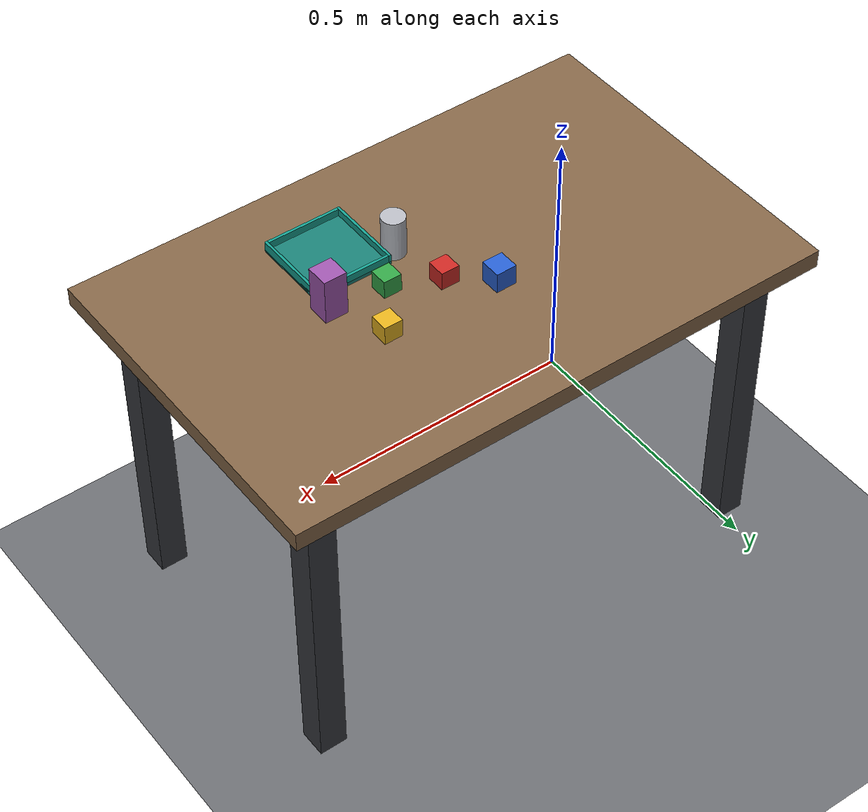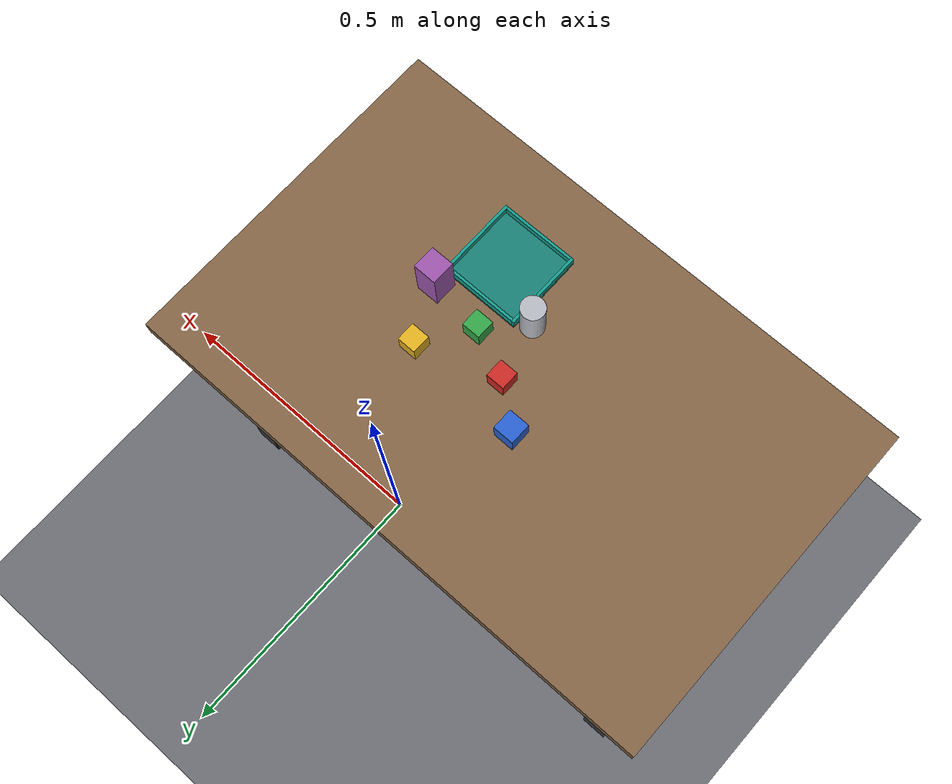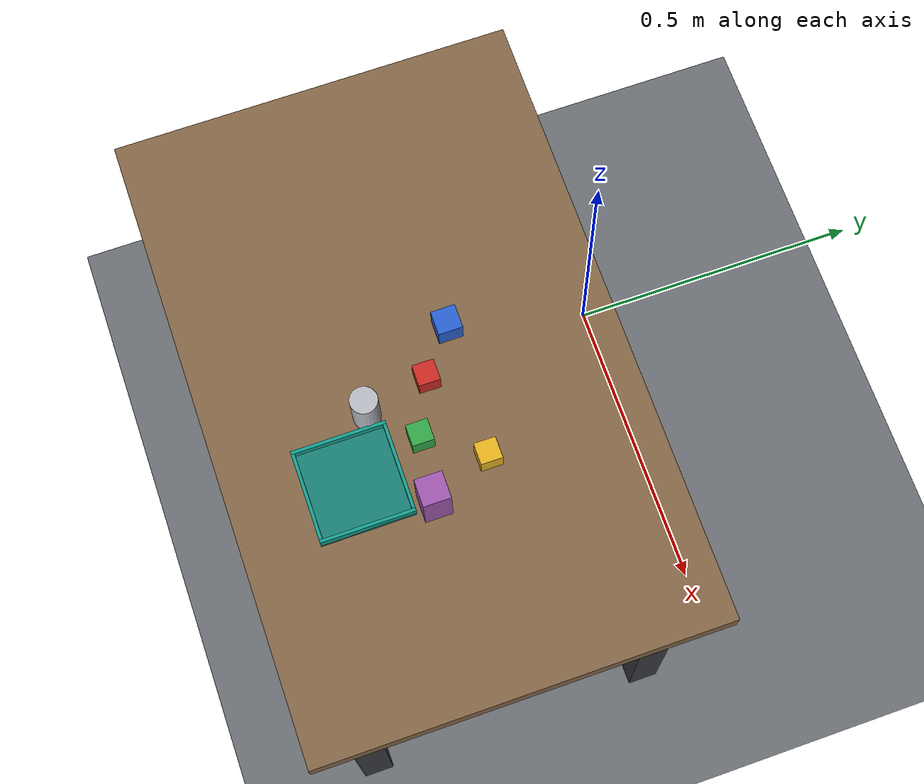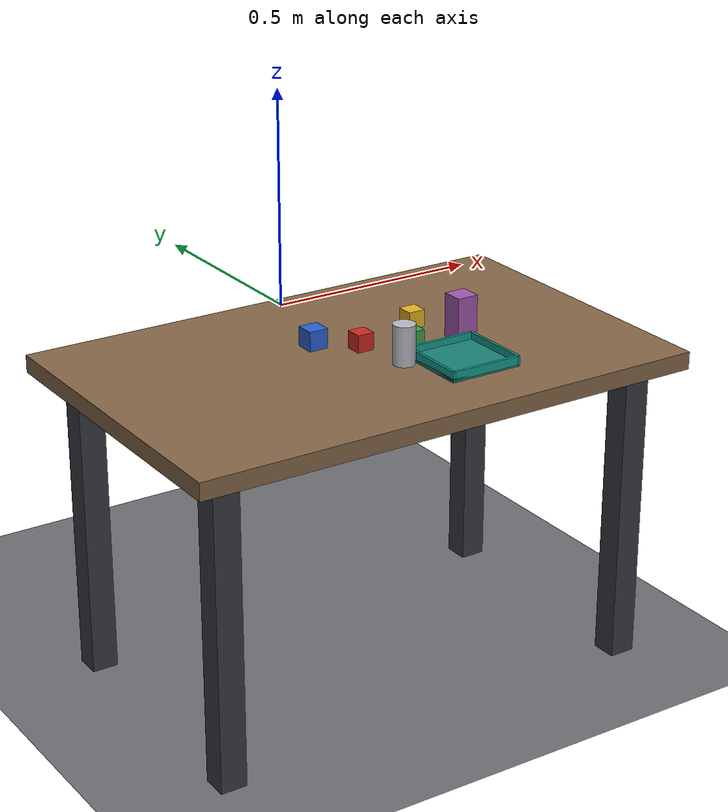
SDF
<?xml version="1.0" ?>
<sdf version="1.8">
  <world name="mod101_bench">

    <physics name="1ms" type="ignored">
      <max_step_size>0.001</max_step_size>
      <real_time_factor>1.0</real_time_factor>
    </physics>

    <plugin filename="gz-sim-physics-system" name="gz::sim::systems::Physics">
      <engine><filename>gz-physics-bullet-featherstone-plugin</filename></engine>
    </plugin>
    <plugin filename="gz-sim-user-commands-system" name="gz::sim::systems::UserCommands"/>
    <plugin filename="gz-sim-scene-broadcaster-system" name="gz::sim::systems::SceneBroadcaster"/>
    <!-- Required to actually drive camera/IMU/etc. sensors. -->
    <plugin filename="gz-sim-sensors-system" name="gz::sim::systems::Sensors">
      <render_engine>ogre2</render_engine>
    </plugin>

    <scene>
      <ambient>0.55 0.55 0.58 1</ambient>
      <background>0.28 0.32 0.38 1</background>
      <shadows>true</shadows>
    </scene>

    <light type="directional" name="sun">
      <cast_shadows>true</cast_shadows>
      <pose>0 0 10 0 0 0</pose>
      <diffuse>0.85 0.85 0.82 1</diffuse>
      <specular>0.2 0.2 0.2 1</specular>
      <attenuation><range>1000</range><constant>0.9</constant>
                   <linear>0.01</linear><quadratic>0.001</quadratic></attenuation>
      <direction>-0.4 0.35 -0.85</direction>
    </light>

    <!-- Fill from the work side. The depth camera does not care; the RGB
         stream, and anything doing colour segmentation on it, does. -->
    <light type="point" name="fill">
      <pose>0.1 -0.55 0.85 0 0 0</pose>
      <cast_shadows>false</cast_shadows>
      <diffuse>0.35 0.35 0.38 1</diffuse>
      <specular>0.05 0.05 0.05 1</specular>
      <attenuation><range>6</range><constant>0.4</constant>
                   <linear>0.2</linear><quadratic>0.05</quadratic></attenuation>
    </light>

    <!-- The room floor, 740 mm below the table top. -->
    <model name="ground_plane">
      <static>true</static>
      <pose>0 0 -0.75 0 0 0</pose>
      <link name="link">
        <collision name="collision">
          <geometry><plane><normal>0 0 1</normal></plane></geometry>
        </collision>
        <visual name="visual">
          <geometry><plane><normal>0 0 1</normal><size>60 60</size></plane></geometry>
          <material><ambient>0.32 0.33 0.35 1</ambient>
                    <diffuse>0.42 0.43 0.45 1</diffuse>
                    <specular>0.05 0.05 0.05 1</specular></material>
        </visual>
      </link>
    </model>

    <model name="table">
      <static>true</static>
      <pose>0.000 -0.320 0 0 0 0</pose>
      <link name="link">

        <collision name="top_collision">
          <pose>0 0 -0.0300 0 0 0</pose>
          <geometry><box><size>1.20 0.76 0.04</size></box></geometry>
          <surface>
            <friction>
              <ode><mu>0.9</mu><mu2>0.9</mu2></ode>
              <bullet><friction>0.9</friction><friction2>0.9</friction2></bullet>
            </friction>
          </surface>
        </collision>
        <visual name="top_visual">
          <pose>0 0 -0.0300 0 0 0</pose>
          <geometry><box><size>1.20 0.76 0.04</size></box></geometry>
          <material><ambient>0.29 0.24 0.19 1</ambient>
                    <diffuse>0.52 0.40 0.28 1</diffuse>
                    <specular>0.10 0.09 0.08 1</specular></material>
        </visual>

        <collision name="leg_fl_collision">
          <pose>-0.510 -0.290 -0.4000 0 0 0</pose>
          <geometry><box><size>0.06 0.06 0.700</size></box></geometry>
        </collision>
        <visual name="leg_fl_visual">
          <pose>-0.510 -0.290 -0.4000 0 0 0</pose>
          <geometry><box><size>0.06 0.06 0.700</size></box></geometry>
          <material><ambient>0.13 0.14 0.15 1</ambient><diffuse>0.22 0.23 0.25 1</diffuse></material>
        </visual>
        <collision name="leg_fr_collision">
          <pose>0.510 -0.290 -0.4000 0 0 0</pose>
          <geometry><box><size>0.06 0.06 0.700</size></box></geometry>
        </collision>
        <visual name="leg_fr_visual">
          <pose>0.510 -0.290 -0.4000 0 0 0</pose>
          <geometry><box><size>0.06 0.06 0.700</size></box></geometry>
          <material><ambient>0.13 0.14 0.15 1</ambient><diffuse>0.22 0.23 0.25 1</diffuse></material>
        </visual>
        <collision name="leg_bl_collision">
          <pose>-0.510 0.290 -0.4000 0 0 0</pose>
          <geometry><box><size>0.06 0.06 0.700</size></box></geometry>
        </collision>
        <visual name="leg_bl_visual">
          <pose>-0.510 0.290 -0.4000 0 0 0</pose>
          <geometry><box><size>0.06 0.06 0.700</size></box></geometry>
          <material><ambient>0.13 0.14 0.15 1</ambient><diffuse>0.22 0.23 0.25 1</diffuse></material>
        </visual>
        <collision name="leg_br_collision">
          <pose>0.510 0.290 -0.4000 0 0 0</pose>
          <geometry><box><size>0.06 0.06 0.700</size></box></geometry>
        </collision>
        <visual name="leg_br_visual">
          <pose>0.510 0.290 -0.4000 0 0 0</pose>
          <geometry><box><size>0.06 0.06 0.700</size></box></geometry>
          <material><ambient>0.13 0.14 0.15 1</ambient><diffuse>0.22 0.23 0.25 1</diffuse></material>
        </visual>
      </link>
    </model>

    <!-- 741 top-down grasps, 0.185 m from the arm base — the sweet spot -->
    <model name="cube_red">
      <pose>0.020 -0.300 0.0100 0 0 0</pose>
      <link name="link">
        <inertial><mass>0.05</mass>
          <inertia><ixx>1.333e-05</ixx><iyy>1.333e-05</iyy><izz>1.333e-05</izz>
                   <ixy>0</ixy><ixz>0</ixz><iyz>0</iyz></inertia></inertial>
        <collision name="collision">
          <geometry><box><size>0.04 0.04 0.04</size></box></geometry>
          <surface>
            <friction>
              <ode><mu>1.1</mu><mu2>1.1</mu2></ode>
              <bullet><friction>1.1</friction><friction2>1.1</friction2></bullet>
            </friction>
            <contact><ode><kp>1e6</kp><kd>100</kd></ode></contact>
          </surface>
        </collision>
        <visual name="visual">
          <geometry><box><size>0.04 0.04 0.04</size></box></geometry>
          <material><ambient>0.28 0.06 0.05 1</ambient>
                    <diffuse>0.80 0.16 0.14 1</diffuse>
                    <specular>0.12 0.12 0.12 1</specular></material>
        </visual>
      </link>
    </model>

    <!-- 239 top-down grasps, 0.281 m -->
    <model name="cube_green">
      <pose>0.120 -0.345 0.0100 0 0 0</pose>
      <link name="link">
        <inertial><mass>0.05</mass>
          <inertia><ixx>1.333e-05</ixx><iyy>1.333e-05</iyy><izz>1.333e-05</izz>
                   <ixy>0</ixy><ixz>0</ixz><iyz>0</iyz></inertia></inertial>
        <collision name="collision">
          <geometry><box><size>0.04 0.04 0.04</size></box></geometry>
          <surface>
            <friction>
              <ode><mu>1.1</mu><mu2>1.1</mu2></ode>
              <bullet><friction>1.1</friction><friction2>1.1</friction2></bullet>
            </friction>
            <contact><ode><kp>1e6</kp><kd>100</kd></ode></contact>
          </surface>
        </collision>
        <visual name="visual">
          <geometry><box><size>0.04 0.04 0.04</size></box></geometry>
          <material><ambient>0.07 0.23 0.10 1</ambient>
                    <diffuse>0.20 0.65 0.28 1</diffuse>
                    <specular>0.12 0.12 0.12 1</specular></material>
        </visual>
      </link>
    </model>

    <!-- 512 top-down grasps, 0.096 m — tucked in close to the base -->
    <model name="cube_blue">
      <pose>-0.060 -0.235 0.0125 0 0 0</pose>
      <link name="link">
        <inertial><mass>0.06</mass>
          <inertia><ixx>2.025e-05</ixx><iyy>2.025e-05</iyy><izz>2.025e-05</izz>
                   <ixy>0</ixy><ixz>0</ixz><iyz>0</iyz></inertia></inertial>
        <collision name="collision">
          <geometry><box><size>0.045 0.045 0.045</size></box></geometry>
          <surface>
            <friction>
              <ode><mu>1.1</mu><mu2>1.1</mu2></ode>
              <bullet><friction>1.1</friction><friction2>1.1</friction2></bullet>
            </friction>
            <contact><ode><kp>1e6</kp><kd>100</kd></ode></contact>
          </surface>
        </collision>
        <visual name="visual">
          <geometry><box><size>0.045 0.045 0.045</size></box></geometry>
          <material><ambient>0.06 0.13 0.29 1</ambient>
                    <diffuse>0.16 0.38 0.82 1</diffuse>
                    <specular>0.12 0.12 0.12 1</specular></material>
        </visual>
      </link>
    </model>

    <!-- 253 top-down grasps, 0.282 m -->
    <model name="cube_yellow">
      <pose>0.190 -0.245 0.0100 0 0 0</pose>
      <link name="link">
        <inertial><mass>0.05</mass>
          <inertia><ixx>1.333e-05</ixx><iyy>1.333e-05</iyy><izz>1.333e-05</izz>
                   <ixy>0</ixy><ixz>0</ixz><iyz>0</iyz></inertia></inertial>
        <collision name="collision">
          <geometry><box><size>0.04 0.04 0.04</size></box></geometry>
          <surface>
            <friction>
              <ode><mu>1.1</mu><mu2>1.1</mu2></ode>
              <bullet><friction>1.1</friction><friction2>1.1</friction2></bullet>
            </friction>
            <contact><ode><kp>1e6</kp><kd>100</kd></ode></contact>
          </surface>
        </collision>
        <visual name="visual">
          <geometry><box><size>0.04 0.04 0.04</size></box></geometry>
          <material><ambient>0.32 0.24 0.04 1</ambient>
                    <diffuse>0.90 0.70 0.12 1</diffuse>
                    <specular>0.12 0.12 0.12 1</specular></material>
        </visual>
      </link>
    </model>

    <model name="can">
      <pose>0.050 -0.420 0.0350 0 0 0</pose>
      <link name="link">
        <inertial><mass>0.08</mass>
          <inertia><ixx>6.650e-05</ixx><iyy>6.650e-05</iyy><izz>2.500e-05</izz>
                   <ixy>0</ixy><ixz>0</ixz><iyz>0</iyz></inertia></inertial>
        <collision name="collision">
          <geometry><cylinder><radius>0.025</radius><length>0.09</length></cylinder></geometry>
          <surface>
            <friction>
              <ode><mu>1.1</mu><mu2>1.1</mu2></ode>
              <bullet><friction>1.1</friction><friction2>1.1</friction2></bullet>
            </friction>
            <contact><ode><kp>1e6</kp><kd>100</kd></ode></contact>
          </surface>
        </collision>
        <visual name="visual">
          <geometry><cylinder><radius>0.025</radius><length>0.09</length></cylinder></geometry>
          <material><ambient>0.24 0.24 0.26 1</ambient>
                    <diffuse>0.72 0.73 0.76 1</diffuse>
                    <specular>0.35 0.35 0.37 1</specular></material>
        </visual>
      </link>
    </model>

    <model name="block">
      <pose>0.240 -0.360 0.0400 0 0 0</pose>
      <link name="link">
        <inertial><mass>0.09</mass>
          <inertia><ixx>9.375e-05</ixx><iyy>9.375e-05</iyy><izz>3.750e-05</izz>
                   <ixy>0</ixy><ixz>0</ixz><iyz>0</iyz></inertia></inertial>
        <collision name="collision">
          <geometry><box><size>0.05 0.05 0.1</size></box></geometry>
          <surface>
            <friction>
              <ode><mu>1.1</mu><mu2>1.1</mu2></ode>
              <bullet><friction>1.1</friction><friction2>1.1</friction2></bullet>
            </friction>
            <contact><ode><kp>1e6</kp><kd>100</kd></ode></contact>
          </surface>
        </collision>
        <visual name="visual">
          <geometry><box><size>0.05 0.05 0.1</size></box></geometry>
          <material><ambient>0.30 0.17 0.32 1</ambient>
                    <diffuse>0.62 0.34 0.68 1</diffuse>
                    <specular>0.12 0.12 0.12 1</specular></material>
        </visual>
      </link>
    </model>

    <!-- The place target. Static, and its walls are only 20 mm so the jaws can
         come straight down into it without fouling. 95 top-down poses
         reach the middle of it, at 0.412 m. -->
    <model name="drop_tray">
      <static>true</static>
      <pose>0.160 -0.480 -0.0100 0 0 0</pose>
      <link name="link">
        <collision name="floor_collision">
          <pose>0 0 0.004 0 0 0</pose>
          <geometry><box><size>0.172 0.172 0.008</size></box></geometry>
        </collision>
        <visual name="floor_visual">
          <pose>0 0 0.004 0 0 0</pose>
          <geometry><box><size>0.172 0.172 0.008</size></box></geometry>
          <material><ambient>0.06 0.20 0.19 1</ambient><diffuse>0.10 0.50 0.46 1</diffuse></material>
        </visual>
        <collision name="wall_x_neg_collision">
          <pose>-0.0830 0.0000 0.0140 0 0 0</pose>
          <geometry><box><size>0.006 0.172 0.02</size></box></geometry>
        </collision>
        <visual name="wall_x_neg_visual">
          <pose>-0.0830 0.0000 0.0140 0 0 0</pose>
          <geometry><box><size>0.006 0.172 0.02</size></box></geometry>
          <material><ambient>0.10 0.26 0.24 1</ambient><diffuse>0.08 0.62 0.56 1</diffuse></material>
        </visual>
        <collision name="wall_x_pos_collision">
          <pose>0.0830 0.0000 0.0140 0 0 0</pose>
          <geometry><box><size>0.006 0.172 0.02</size></box></geometry>
        </collision>
        <visual name="wall_x_pos_visual">
          <pose>0.0830 0.0000 0.0140 0 0 0</pose>
          <geometry><box><size>0.006 0.172 0.02</size></box></geometry>
          <material><ambient>0.10 0.26 0.24 1</ambient><diffuse>0.08 0.62 0.56 1</diffuse></material>
        </visual>
        <collision name="wall_y_neg_collision">
          <pose>0.0000 -0.0830 0.0140 0 0 0</pose>
          <geometry><box><size>0.160 0.006 0.02</size></box></geometry>
        </collision>
        <visual name="wall_y_neg_visual">
          <pose>0.0000 -0.0830 0.0140 0 0 0</pose>
          <geometry><box><size>0.160 0.006 0.02</size></box></geometry>
          <material><ambient>0.10 0.26 0.24 1</ambient><diffuse>0.08 0.62 0.56 1</diffuse></material>
        </visual>
        <collision name="wall_y_pos_collision">
          <pose>0.0000 0.0830 0.0140 0 0 0</pose>
          <geometry><box><size>0.160 0.006 0.02</size></box></geometry>
        </collision>
        <visual name="wall_y_pos_visual">
          <pose>0.0000 0.0830 0.0140 0 0 0</pose>
          <geometry><box><size>0.160 0.006 0.02</size></box></geometry>
          <material><ambient>0.10 0.26 0.24 1</ambient><diffuse>0.08 0.62 0.56 1</diffuse></material>
        </visual>
      </link>
    </model>

  </world>
</sdf>
